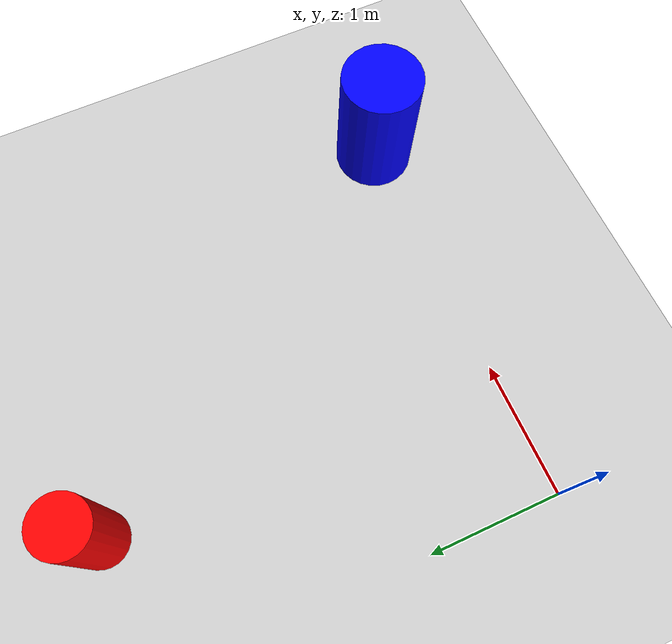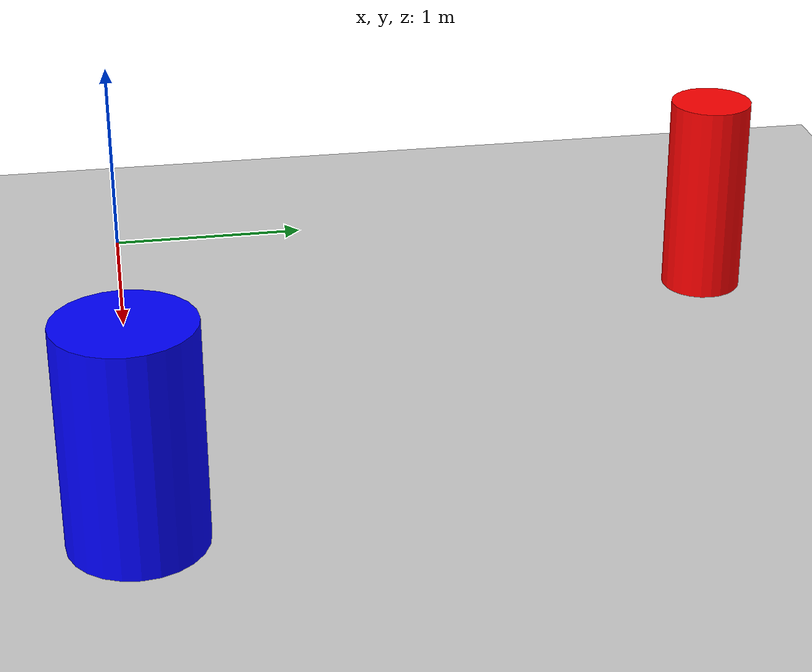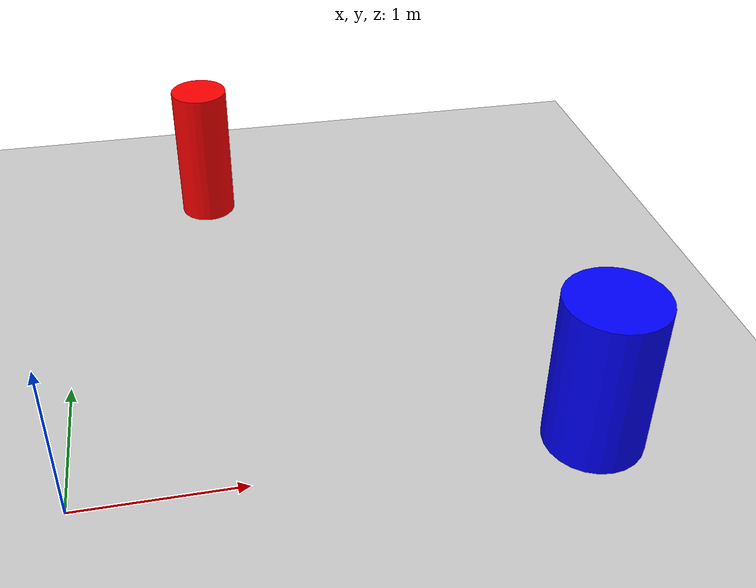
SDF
<?xml version="1.0" ?>
<sdf version="1.6">
  <world name="default">
    <include>
      <uri>model://ground_plane</uri>
    </include>
    <include>
      <uri>model://sun</uri>
    </include>

    <!-- Obstacle 1: Cylinder at x=1.0, y=3.0 (Blocking the first straightaway) -->
    <model name="cylinder_obstacle_1">
      <pose>1.0 3.0 0.5 0 0 0</pose>
      <static>true</static>
      <link name="link">
        <collision name="collision">
          <geometry>
            <cylinder>
              <radius>0.2</radius>
              <length>1.0</length>
            </cylinder>
          </geometry>
        </collision>
        <visual name="visual">
          <geometry>
            <cylinder>
              <radius>0.2</radius>
              <length>1.0</length>
            </cylinder>
          </geometry>
          <material>
            <ambient>1 0 0 1</ambient>
            <diffuse>1 0 0 1</diffuse>
          </material>
        </visual>
      </link>
    </model>

    <!-- Obstacle 2: Cylinder at x=3.0, y=0.0 (Blocking the diagonal cross) -->
    <model name="cylinder_obstacle_2">
      <pose>3.0 0.0 0.5 0 0 0</pose>
      <static>true</static>
      <link name="link">
        <collision name="collision">
          <geometry>
            <cylinder>
              <radius>0.3</radius>
              <length>1.0</length>
            </cylinder>
          </geometry>
        </collision>
        <visual name="visual">
          <geometry>
            <cylinder>
              <radius>0.3</radius>
              <length>1.0</length>
            </cylinder>
          </geometry>
          <material>
            <ambient>0 0 1 1</ambient>
            <diffuse>0 0 1 1</diffuse>
          </material>
        </visual>
      </link>
    </model>
  </world>
</sdf>
